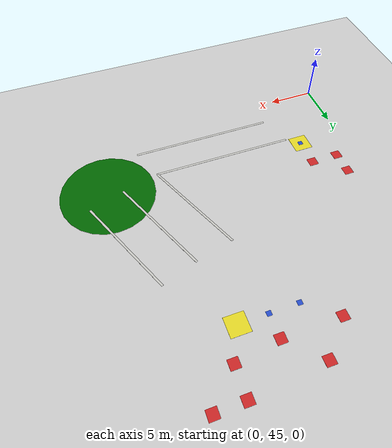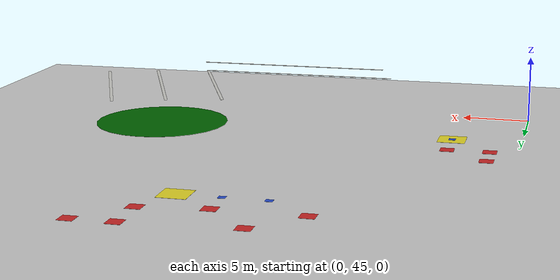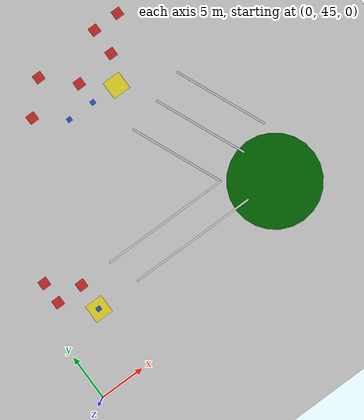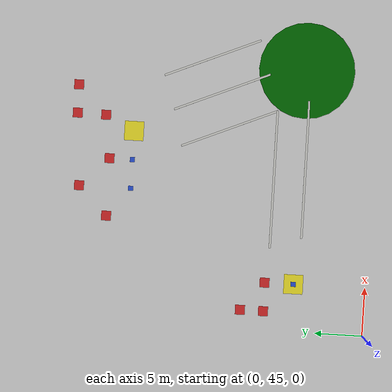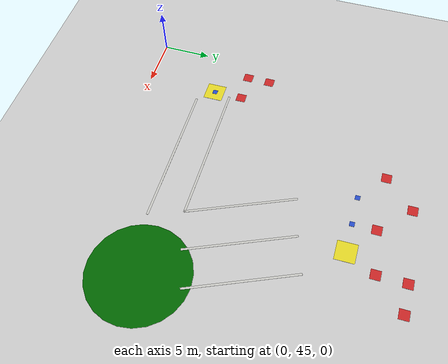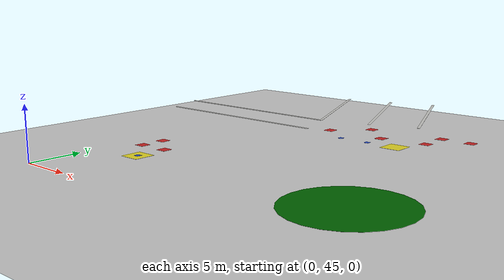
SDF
<sdf version="1.6">
 <world name="default">
  <model name="ground_plane">
   <static>1</static>
   <link name="link">
    <collision name="collision">
     <geometry><plane><normal>0 0 1</normal><size>100 100</size></plane></geometry>
     <surface><friction><ode><mu>100</mu><mu2>50</mu2></ode></friction></surface>
    </collision>
    <visual name="visual">
     <cast_shadows>0</cast_shadows>
     <geometry><plane><normal>0 0 1</normal><size>100 100</size></plane></geometry>
     <material>
      <script><uri>file://media/materials/scripts/gazebo.material</uri><name>Gazebo/Grey</name></script>
     </material>
    </visual>
   </link>
  </model>
  <model name="my_objectT1">
   <link name="my_box">
    <inertial>
     <mass>1</mass>
     <inertia><ixx>1</ixx><ixy>0</ixy><ixz>0</ixz><iyy>100</iyy><iyz>0</iyz><izz>1</izz></inertia>
    </inertial>
    <collision name="my_box_collision"><geometry><box><size>2 2 0.01</size></box></geometry></collision>
    <visual name="my_box_visual">
     <geometry><box><size>2 2 0.01</size></box></geometry>
     <material>
      <script><name>Gazebo/Yellow</name><uri>file://media/materials/scripts/gazebo.material</uri></script>
     </material>
    </visual>
   </link>
   <pose>19.9994 70.0003 0.114978 3e-05 -0 0.000109</pose>
  </model>
  <model name="my_objectT3">
   <link name="my_box">
    <inertial>
     <mass>1</mass>
     <inertia><ixx>1</ixx><ixy>0</ixy><ixz>0</ixz><iyy>100</iyy><iyz>0</iyz><izz>1</izz></inertia>
    </inertial>
    <collision name="my_box_collision"><geometry><box><size>2 2 0.01</size></box></geometry></collision>
    <visual name="my_box_visual">
     <geometry><box><size>2 2 0.01</size></box></geometry>
     <material>
      <script><name>Gazebo/Yellow</name><uri>file://media/materials/scripts/gazebo.material</uri></script>
     </material>
    </visual>
   </link>
   <pose>5.00081 52.4973 0.104988 3e-06 -0 0.000593</pose>
  </model>
  <model name="my_objecteg1w2">
   <link name="my_box">
    <inertial>
     <mass>1</mass>
     <inertia><ixx>1</ixx><ixy>0</ixy><ixz>0</ixz><iyy>100</iyy><iyz>0</iyz><izz>1</izz></inertia>
    </inertial>
    <collision name="my_box_collision"><geometry><box><size>1 1 0.01</size></box></geometry></collision>
    <visual name="my_box_visual">
     <geometry><box><size>1 1 0.01</size></box></geometry>
     <material>
      <script><name>Gazebo/Red</name><uri>file://media/materials/scripts/gazebo.material</uri></script>
     </material>
    </visual>
   </link>
   <pose>5 55.5 0.105 0 -0 0</pose>
  </model>
  <model name="my_objecteg4w1">
   <link name="my_box">
    <inertial>
     <mass>1</mass>
     <inertia><ixx>1</ixx><ixy>0</ixy><ixz>0</ixz><iyy>100</iyy><iyz>0</iyz><izz>1</izz></inertia>
    </inertial>
    <collision name="my_box_collision"><geometry><box><size>1 1 0.01</size></box></geometry></collision>
    <visual name="my_box_visual">
     <geometry><box><size>1 1 0.01</size></box></geometry>
     <material>
      <script><name>Gazebo/Red</name><uri>file://media/materials/scripts/gazebo.material</uri></script>
     </material>
    </visual>
   </link>
   <pose>2.0174 55.4814 0.104998 0 -0 0</pose>
  </model>
  <model name="my_objecteg4w3">
   <link name="my_box">
    <inertial>
     <mass>1</mass>
     <inertia><ixx>1</ixx><ixy>0</ixy><ixz>0</ixz><iyy>100</iyy><iyz>0</iyz><izz>1</izz></inertia>
    </inertial>
    <collision name="my_box_collision"><geometry><box><size>1 1 0.01</size></box></geometry></collision>
    <visual name="my_box_visual">
     <geometry><box><size>1 1 0.01</size></box></geometry>
     <material>
      <script><name>Gazebo/Red</name><uri>file://media/materials/scripts/gazebo.material</uri></script>
     </material>
    </visual>
   </link>
   <pose>2.02781 57.8944 0.104999 0 -0 6e-06</pose>
  </model>
  <model name="my_objecteg5w1">
   <link name="my_box">
    <inertial>
     <mass>1</mass>
     <inertia><ixx>1</ixx><ixy>0</ixy><ixz>0</ixz><iyy>100</iyy><iyz>0</iyz><izz>1</izz></inertia>
    </inertial>
    <collision name="my_box_collision"><geometry><box><size>1 1 0.01</size></box></geometry></collision>
    <visual name="my_box_visual">
     <geometry><box><size>1 1 0.01</size></box></geometry>
     <material>
      <script><name>Gazebo/Red</name><uri>file://media/materials/scripts/gazebo.material</uri></script>
     </material>
    </visual>
   </link>
   <pose>11 72.4 0.104998 0 -0 0</pose>
  </model>
  <model name="my_objecteg5w2">
   <link name="my_box">
    <inertial>
     <mass>1</mass>
     <inertia><ixx>1</ixx><ixy>0</ixy><ixz>0</ixz><iyy>100</iyy><iyz>0</iyz><izz>1</izz></inertia>
    </inertial>
    <collision name="my_box_collision"><geometry><box><size>1 1 0.01</size></box></geometry></collision>
    <visual name="my_box_visual">
     <geometry><box><size>1 1 0.01</size></box></geometry>
     <material>
      <script><name>Gazebo/Red</name><uri>file://media/materials/scripts/gazebo.material</uri></script>
     </material>
    </visual>
   </link>
   <pose>14 75.4 0.104998 0 -0 0</pose>
  </model>
  <model name="my_objecteg5w3">
   <link name="my_box">
    <inertial>
     <mass>1</mass>
     <inertia><ixx>1</ixx><ixy>0</ixy><ixz>0</ixz><iyy>100</iyy><iyz>0</iyz><izz>1</izz></inertia>
    </inertial>
    <collision name="my_box_collision"><geometry><box><size>1 1 0.01</size></box></geometry></collision>
    <visual name="my_box_visual">
     <geometry><box><size>1 1 0.01</size></box></geometry>
     <material>
      <script><name>Gazebo/Red</name><uri>file://media/materials/scripts/gazebo.material</uri></script>
     </material>
    </visual>
   </link>
   <pose>17 72.4 0.104998 0 -0 0</pose>
  </model>
  <model name="my_objecteg6w1">
   <link name="my_box">
    <inertial>
     <mass>1</mass>
     <inertia><ixx>1</ixx><ixy>0</ixy><ixz>0</ixz><iyy>100</iyy><iyz>0</iyz><izz>1</izz></inertia>
    </inertial>
    <collision name="my_box_collision"><geometry><box><size>1 1 0.01</size></box></geometry></collision>
    <visual name="my_box_visual">
     <geometry><box><size>1 1 0.01</size></box></geometry>
     <material>
      <script><name>Gazebo/Red</name><uri>file://media/materials/scripts/gazebo.material</uri></script>
     </material>
    </visual>
   </link>
   <pose>21.5 73 0.104998 0 -0 0</pose>
  </model>
  <model name="my_objecteg6w2">
   <link name="my_box">
    <inertial>
     <mass>1</mass>
     <inertia><ixx>1</ixx><ixy>0</ixy><ixz>0</ixz><iyy>100</iyy><iyz>0</iyz><izz>1</izz></inertia>
    </inertial>
    <collision name="my_box_collision"><geometry><box><size>1 1 0.01</size></box></geometry></collision>
    <visual name="my_box_visual">
     <geometry><box><size>1 1 0.01</size></box></geometry>
     <material>
      <script><name>Gazebo/Red</name><uri>file://media/materials/scripts/gazebo.material</uri></script>
     </material>
    </visual>
   </link>
   <pose>24.5 76 0.104998 0 -0 0</pose>
  </model>
  <model name="my_objecteg6w3">
   <link name="my_box">
    <inertial>
     <mass>1</mass>
     <inertia><ixx>1</ixx><ixy>0</ixy><ixz>0</ixz><iyy>100</iyy><iyz>0</iyz><izz>1</izz></inertia>
    </inertial>
    <collision name="my_box_collision"><geometry><box><size>1 1 0.01</size></box></geometry></collision>
    <visual name="my_box_visual">
     <geometry><box><size>1 1 0.01</size></box></geometry>
     <material>
      <script><name>Gazebo/Red</name><uri>file://media/materials/scripts/gazebo.material</uri></script>
     </material>
    </visual>
   </link>
   <pose>21.5535 75.9732 0.104991 0 -0 0</pose>
  </model>
  <model name="my_objectg3w1">
   <link name="my_box">
    <inertial>
     <mass>1</mass>
     <inertia><ixx>1</ixx><ixy>0</ixy><ixz>0</ixz><iyy>100</iyy><iyz>0</iyz><izz>1</izz></inertia>
    </inertial>
    <collision name="my_box_collision"><geometry><box><size>0.5 0.5 0.01</size></box></geometry></collision>
    <visual name="my_box_visual">
     <geometry><box><size>0.5 0.5 0.01</size></box></geometry>
     <material>
      <script><name>Gazebo/Blue</name><uri>file://media/materials/scripts/gazebo.material</uri></script>
     </material>
    </visual>
   </link>
   <pose>19.9965 70.0042 0.105 1e-06 0 -2e-06</pose>
  </model>
  <model name="my_objectg3w2">
   <link name="my_box">
    <inertial>
     <mass>1</mass>
     <inertia><ixx>1</ixx><ixy>0</ixy><ixz>0</ixz><iyy>100</iyy><iyz>0</iyz><izz>1</izz></inertia>
    </inertial>
    <collision name="my_box_collision"><geometry><box><size>0.5 0.5 0.01</size></box></geometry></collision>
    <visual name="my_box_visual">
     <geometry><box><size>0.5 0.5 0.01</size></box></geometry>
     <material>
      <script><name>Gazebo/Blue</name><uri>file://media/materials/scripts/gazebo.material</uri></script>
     </material>
    </visual>
   </link>
   <pose>16.9945 70.0086 0.104999 -5e-06 1e-06 -0.000992</pose>
  </model>
  <model name="my_objectg3w3">
   <link name="my_box">
    <inertial>
     <mass>1</mass>
     <inertia><ixx>1</ixx><ixy>0</ixy><ixz>0</ixz><iyy>100</iyy><iyz>0</iyz><izz>1</izz></inertia>
    </inertial>
    <collision name="my_box_collision"><geometry><box><size>0.5 0.5 0.01</size></box></geometry></collision>
    <visual name="my_box_visual">
     <geometry><box><size>0.5 0.5 0.01</size></box></geometry>
     <material>
      <script><name>Gazebo/Blue</name><uri>file://media/materials/scripts/gazebo.material</uri></script>
     </material>
    </visual>
   </link>
   <pose>13.9943 70.0089 0.105001 3e-06 1e-06 0.000768</pose>
  </model>
  <model name="my_objectg4w1">
   <link name="my_box">
    <inertial>
     <mass>1</mass>
     <inertia><ixx>1</ixx><ixy>0</ixy><ixz>0</ixz><iyy>100</iyy><iyz>0</iyz><izz>1</izz></inertia>
    </inertial>
    <collision name="my_box_collision"><geometry><box><size>0.5 0.5 0.01</size></box></geometry></collision>
    <visual name="my_box_visual">
     <geometry><box><size>0.5 0.5 0.01</size></box></geometry>
     <material>
      <script><name>Gazebo/Blue</name><uri>file://media/materials/scripts/gazebo.material</uri></script>
     </material>
    </visual>
   </link>
   <pose>4.99434 52.5091 0.114994 -1.7e-05 3e-06 0.000934</pose>
  </model>
  <model name="353_clone_clone_0">
   <link name="Wall_10">
    <pose>0 0 0 0 -0 3.14159</pose>
    <gravity>0</gravity>
    <inertial>
     <mass>1</mass>
     <inertia><ixx>1</ixx><ixy>0</ixy><ixz>0</ixz><iyy>1</iyy><iyz>0</iyz><izz>1</izz></inertia>
    </inertial>
    <visual name="Wall_10_Visual">
     <pose>0 0 5 0 -0 0</pose>
     <geometry><box><size>13.45 0.2 0.01</size></box></geometry>
     <material>
      <script><uri>file://media/materials/scripts/gazebo.material</uri><name>Gazebo/CeilingTiled</name></script>
      <ambient>0.435 0.796 0.675 1</ambient>
      <diffuse>1 1 1 1</diffuse>
      <specular>0 0 0 1</specular>
      <emissive>1 1 0 1</emissive>
      <shader type="vertex"><normal_map>__default__</normal_map></shader>
     </material>
    </visual>
    <collision name="Wall_10_Collision">
     <pose>0 0 1.25 0 -0 0</pose>
     <geometry><box><size>13.45 0.001 2.5</size></box></geometry>
     <surface>
      <friction>
       <ode><mu>1</mu><mu2>1</mu2><fdir1>0 0 0</fdir1><slip1>0</slip1><slip2>0</slip2></ode>
       <torsional>
        <coefficient>1</coefficient>
        <patch_radius>0</patch_radius>
        <surface_radius>0</surface_radius>
        <use_patch_radius>1</use_patch_radius>
        <ode><slip>0</slip></ode>
       </torsional>
      </friction>
      <bounce><restitution_coefficient>0</restitution_coefficient><threshold>1e+06</threshold></bounce>
      <contact>
       <collide_without_contact>0</collide_without_contact>
       <collide_without_contact_bitmask>1</collide_without_contact_bitmask>
       <collide_bitmask>1</collide_bitmask>
       <ode>
        <soft_cfm>0</soft_cfm>
        <soft_erp>0.2</soft_erp>
        <kp>1e+13</kp>
        <kd>1</kd>
        <max_vel>0.01</max_vel>
        <min_depth>0</min_depth>
       </ode>
       <bullet>
        <split_impulse>1</split_impulse>
        <split_impulse_penetration_threshold>-0.01</split_impulse_penetration_threshold>
        <soft_cfm>0</soft_cfm>
        <soft_erp>0.2</soft_erp>
        <kp>1e+13</kp>
        <kd>1</kd>
       </bullet>
      </contact>
     </surface>
    </collision>
   </link>
   <static>1</static>
   <pose>15.7845 55.5321 0 0 -0 0</pose>
  </model>
  <model name="353_0">
   <link name="Wall_10">
    <pose>0 0 0 0 -0 3.14159</pose>
    <gravity>0</gravity>
    <inertial>
     <mass>1</mass>
     <inertia><ixx>1</ixx><ixy>0</ixy><ixz>0</ixz><iyy>1</iyy><iyz>0</iyz><izz>1</izz></inertia>
    </inertial>
    <visual name="Wall_10_Visual">
     <pose>0 0 5 0 -0 0</pose>
     <geometry><box><size>13.45 0.2 0.01</size></box></geometry>
     <material>
      <script><uri>file://media/materials/scripts/gazebo.material</uri><name>Gazebo/CeilingTiled</name></script>
      <ambient>0.435 0.796 0.675 1</ambient>
      <diffuse>1 1 1 1</diffuse>
      <specular>0 0 0 1</specular>
      <emissive>1 1 0 1</emissive>
      <shader type="vertex"><normal_map>__default__</normal_map></shader>
     </material>
    </visual>
    <collision name="Wall_10_Collision">
     <pose>0 0 1.25 0 -0 0</pose>
     <geometry><box><size>13.45 0.001 2.5</size></box></geometry>
     <surface>
      <friction>
       <ode><mu>1</mu><mu2>1</mu2><fdir1>0 0 0</fdir1><slip1>0</slip1><slip2>0</slip2></ode>
       <torsional>
        <coefficient>1</coefficient>
        <patch_radius>0</patch_radius>
        <surface_radius>0</surface_radius>
        <use_patch_radius>1</use_patch_radius>
        <ode><slip>0</slip></ode>
       </torsional>
      </friction>
      <bounce><restitution_coefficient>0</restitution_coefficient><threshold>1e+06</threshold></bounce>
      <contact>
       <collide_without_contact>0</collide_without_contact>
       <collide_without_contact_bitmask>1</collide_without_contact_bitmask>
       <collide_bitmask>1</collide_bitmask>
       <ode>
        <soft_cfm>0</soft_cfm>
        <soft_erp>0.2</soft_erp>
        <kp>1e+13</kp>
        <kd>1</kd>
        <max_vel>0.01</max_vel>
        <min_depth>0</min_depth>
       </ode>
       <bullet>
        <split_impulse>1</split_impulse>
        <split_impulse_penetration_threshold>-0.01</split_impulse_penetration_threshold>
        <soft_cfm>0</soft_cfm>
        <soft_erp>0.2</soft_erp>
        <kp>1e+13</kp>
        <kd>1</kd>
       </bullet>
      </contact>
     </surface>
    </collision>
   </link>
   <static>1</static>
   <pose>16.9056 52.5 0 0 -0 0</pose>
  </model>
  <model name="352_clone_0">
   <link name="Wall_8">
    <pose>-0 -4e-06 0 0 -0 1.9733</pose>
    <gravity>0</gravity>
    <inertial>
     <mass>1</mass>
     <inertia><ixx>1</ixx><ixy>0</ixy><ixz>0</ixz><iyy>1</iyy><iyz>0</iyz><izz>1</izz></inertia>
    </inertial>
    <visual name="Wall_8_Visual">
     <pose>0 0 5 0 -0 0</pose>
     <geometry><box><size>10.0198 0.2 0.01</size></box></geometry>
     <material>
      <script><uri>file://media/materials/scripts/gazebo.material</uri><name>Gazebo/CeilingTiled</name></script>
      <ambient>0.435 0.796 0.675 1</ambient>
      <diffuse>1 1 1 1</diffuse>
      <specular>0 0 0 1</specular>
      <emissive>1 1 0 1</emissive>
      <shader type="vertex"><normal_map>__default__</normal_map></shader>
     </material>
    </visual>
    <collision name="Wall_8_Collision">
     <pose>0 0 1.25 0 -0 0</pose>
     <geometry><box><size>10.0198 0.001 2.5</size></box></geometry>
     <surface>
      <friction>
       <ode><mu>1</mu><mu2>1</mu2><fdir1>0 0 0</fdir1><slip1>0</slip1><slip2>0</slip2></ode>
       <torsional>
        <coefficient>1</coefficient>
        <patch_radius>0</patch_radius>
        <surface_radius>0</surface_radius>
        <use_patch_radius>1</use_patch_radius>
        <ode><slip>0</slip></ode>
       </torsional>
      </friction>
      <bounce><restitution_coefficient>0</restitution_coefficient><threshold>1e+06</threshold></bounce>
      <contact>
       <collide_without_contact>0</collide_without_contact>
       <collide_without_contact_bitmask>1</collide_without_contact_bitmask>
       <collide_bitmask>1</collide_bitmask>
       <ode>
        <soft_cfm>0</soft_cfm>
        <soft_erp>0.2</soft_erp>
        <kp>1e+13</kp>
        <kd>1</kd>
        <max_vel>0.01</max_vel>
        <min_depth>0</min_depth>
       </ode>
       <bullet>
        <split_impulse>1</split_impulse>
        <split_impulse_penetration_threshold>-0.01</split_impulse_penetration_threshold>
        <soft_cfm>0</soft_cfm>
        <soft_erp>0.2</soft_erp>
        <kp>1e+13</kp>
        <kd>1</kd>
       </bullet>
      </contact>
     </surface>
    </collision>
   </link>
   <static>1</static>
   <pose>24.0357 61.0304 0 0 -0 0</pose>
  </model>
  <model name="352_0">
   <link name="Wall_8">
    <pose>-0 -4e-06 0 0 -0 1.9733</pose>
    <gravity>0</gravity>
    <inertial>
     <mass>1</mass>
     <inertia><ixx>1</ixx><ixy>0</ixy><ixz>0</ixz><iyy>1</iyy><iyz>0</iyz><izz>1</izz></inertia>
    </inertial>
    <visual name="Wall_8_Visual">
     <pose>0 0 5 0 -0 0</pose>
     <geometry><box><size>10.0198 0.2 0.01</size></box></geometry>
     <material>
      <script><uri>file://media/materials/scripts/gazebo.material</uri><name>Gazebo/CeilingTiled</name></script>
      <ambient>0.435 0.796 0.675 1</ambient>
      <diffuse>1 1 1 1</diffuse>
      <specular>0 0 0 1</specular>
      <emissive>1 1 0 1</emissive>
      <shader type="vertex"><normal_map>__default__</normal_map></shader>
     </material>
    </visual>
    <collision name="Wall_8_Collision">
     <pose>0 0 1.25 0 -0 0</pose>
     <geometry><box><size>10.0198 0.001 2.5</size></box></geometry>
     <surface>
      <friction>
       <ode><mu>1</mu><mu2>1</mu2><fdir1>0 0 0</fdir1><slip1>0</slip1><slip2>0</slip2></ode>
       <torsional>
        <coefficient>1</coefficient>
        <patch_radius>0</patch_radius>
        <surface_radius>0</surface_radius>
        <use_patch_radius>1</use_patch_radius>
        <ode><slip>0</slip></ode>
       </torsional>
      </friction>
      <bounce><restitution_coefficient>0</restitution_coefficient><threshold>1e+06</threshold></bounce>
      <contact>
       <collide_without_contact>0</collide_without_contact>
       <collide_without_contact_bitmask>1</collide_without_contact_bitmask>
       <collide_bitmask>1</collide_bitmask>
       <ode>
        <soft_cfm>0</soft_cfm>
        <soft_erp>0.2</soft_erp>
        <kp>1e+13</kp>
        <kd>1</kd>
        <max_vel>0.01</max_vel>
        <min_depth>0</min_depth>
       </ode>
       <bullet>
        <split_impulse>1</split_impulse>
        <split_impulse_penetration_threshold>-0.01</split_impulse_penetration_threshold>
        <soft_cfm>0</soft_cfm>
        <soft_erp>0.2</soft_erp>
        <kp>1e+13</kp>
        <kd>1</kd>
       </bullet>
      </contact>
     </surface>
    </collision>
   </link>
   <static>1</static>
   <pose>20.5142 60.1221 0 0 -0 0</pose>
  </model>
  <model name="352_clone_clone_0">
   <link name="Wall_8">
    <pose>-0 -4e-06 0 0 -0 1.9733</pose>
    <gravity>0</gravity>
    <inertial>
     <mass>1</mass>
     <inertia><ixx>1</ixx><ixy>0</ixy><ixz>0</ixz><iyy>1</iyy><iyz>0</iyz><izz>1</izz></inertia>
    </inertial>
    <visual name="Wall_8_Visual">
     <pose>0 0 5 0 -0 0</pose>
     <geometry><box><size>10.0198 0.2 0.01</size></box></geometry>
     <material>
      <script><uri>file://media/materials/scripts/gazebo.material</uri><name>Gazebo/CeilingTiled</name></script>
      <ambient>0.435 0.796 0.675 1</ambient>
      <diffuse>1 1 1 1</diffuse>
      <specular>0 0 0 1</specular>
      <emissive>1 1 0 1</emissive>
      <shader type="vertex"><normal_map>__default__</normal_map></shader>
     </material>
    </visual>
    <collision name="Wall_8_Collision">
     <pose>0 0 1.25 0 -0 0</pose>
     <geometry><box><size>10.0198 0.001 2.5</size></box></geometry>
     <surface>
      <friction>
       <ode><mu>1</mu><mu2>1</mu2><fdir1>0 0 0</fdir1><slip1>0</slip1><slip2>0</slip2></ode>
       <torsional>
        <coefficient>1</coefficient>
        <patch_radius>0</patch_radius>
        <surface_radius>0</surface_radius>
        <use_patch_radius>1</use_patch_radius>
        <ode><slip>0</slip></ode>
       </torsional>
      </friction>
      <bounce><restitution_coefficient>0</restitution_coefficient><threshold>1e+06</threshold></bounce>
      <contact>
       <collide_without_contact>0</collide_without_contact>
       <collide_without_contact_bitmask>1</collide_without_contact_bitmask>
       <collide_bitmask>1</collide_bitmask>
       <ode>
        <soft_cfm>0</soft_cfm>
        <soft_erp>0.2</soft_erp>
        <kp>1e+13</kp>
        <kd>1</kd>
        <max_vel>0.01</max_vel>
        <min_depth>0</min_depth>
       </ode>
       <bullet>
        <split_impulse>1</split_impulse>
        <split_impulse_penetration_threshold>-0.01</split_impulse_penetration_threshold>
        <soft_cfm>0</soft_cfm>
        <soft_erp>0.2</soft_erp>
        <kp>1e+13</kp>
        <kd>1</kd>
       </bullet>
      </contact>
     </surface>
    </collision>
   </link>
   <static>1</static>
   <pose>27.3125 62.144 0 0 -0 0</pose>
  </model>
  <model name="unit_cylinder_0_3_clone_clone">
   <link name="link">
    <inertial>
     <mass>1</mass>
     <inertia><ixx>0.145833</ixx><ixy>0</ixy><ixz>0</ixz><iyy>0.145833</iyy><iyz>0</iyz><izz>0.125</izz></inertia>
    </inertial>
    <gravity>0</gravity>
    <visual name="visual">
     <geometry><cylinder><radius>5</radius><length>0.01</length></cylinder></geometry>
     <material>
      <script><name>Gazebo/Grey</name><uri>file://media/materials/scripts/gazebo.material</uri></script>
      <ambient>0 0.4 0 0</ambient>
      <diffuse>0 0.4 0 0</diffuse>
      <specular>0 0.41 0 0</specular>
      <emissive>0 0.4 0 0</emissive>
      <shader type="vertex"><normal_map>__default__</normal_map></shader>
     </material>
    </visual>
   </link>
   <static>0</static>
   <pose>27.2881 52.3623 0.2 0 -0 0</pose>
  </model>
 </world>
</sdf>
